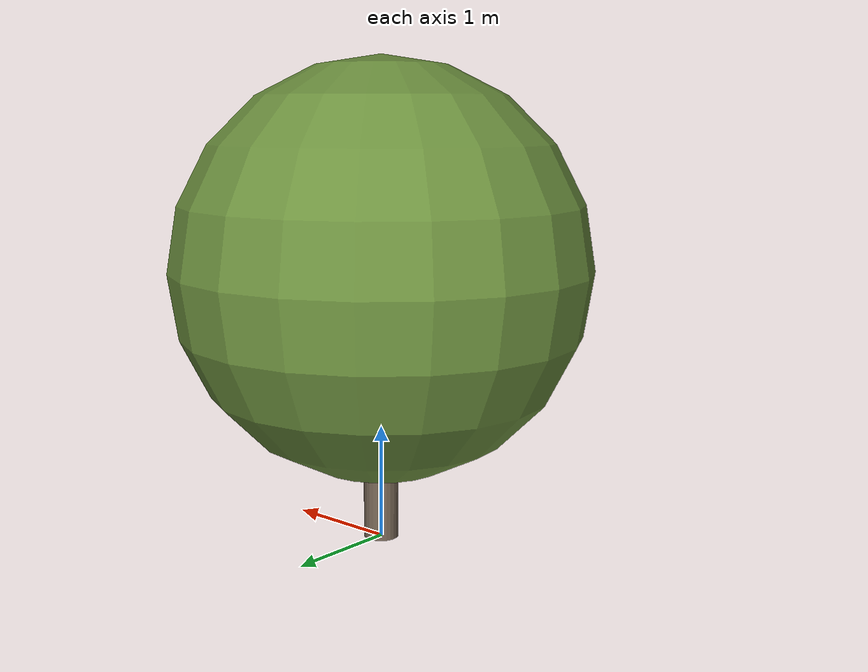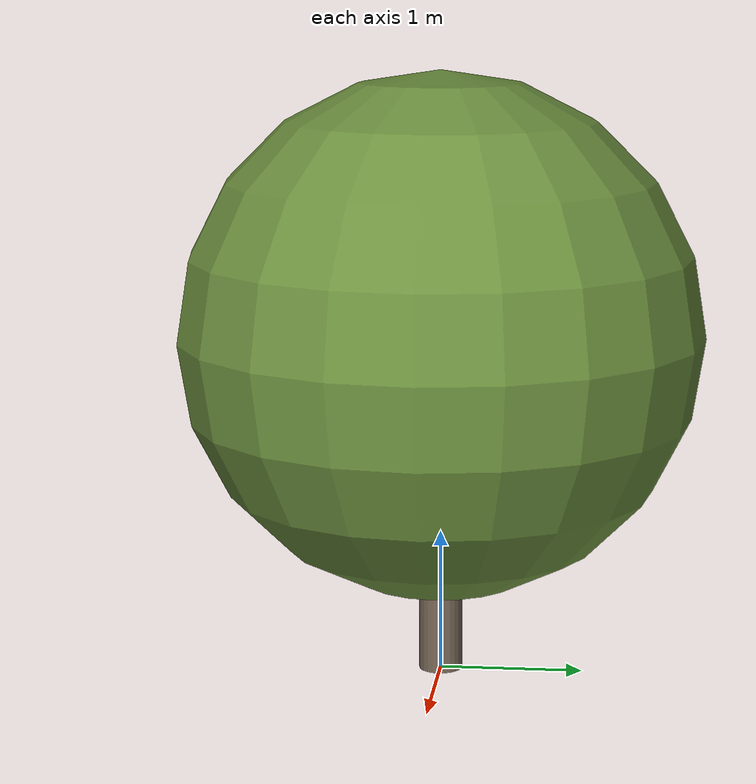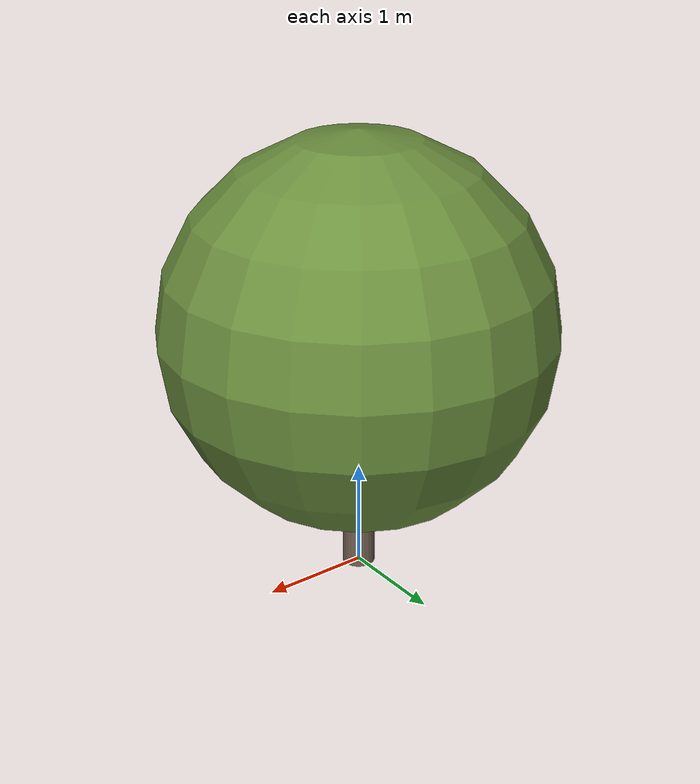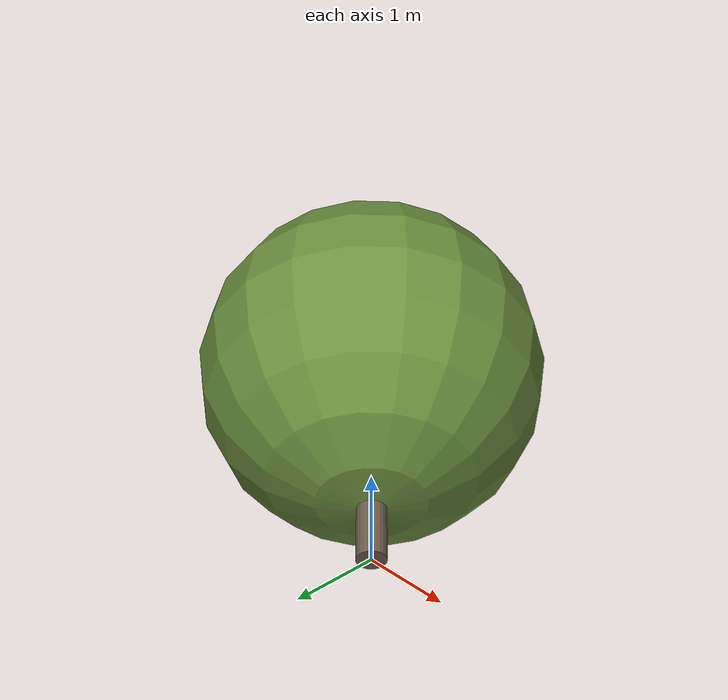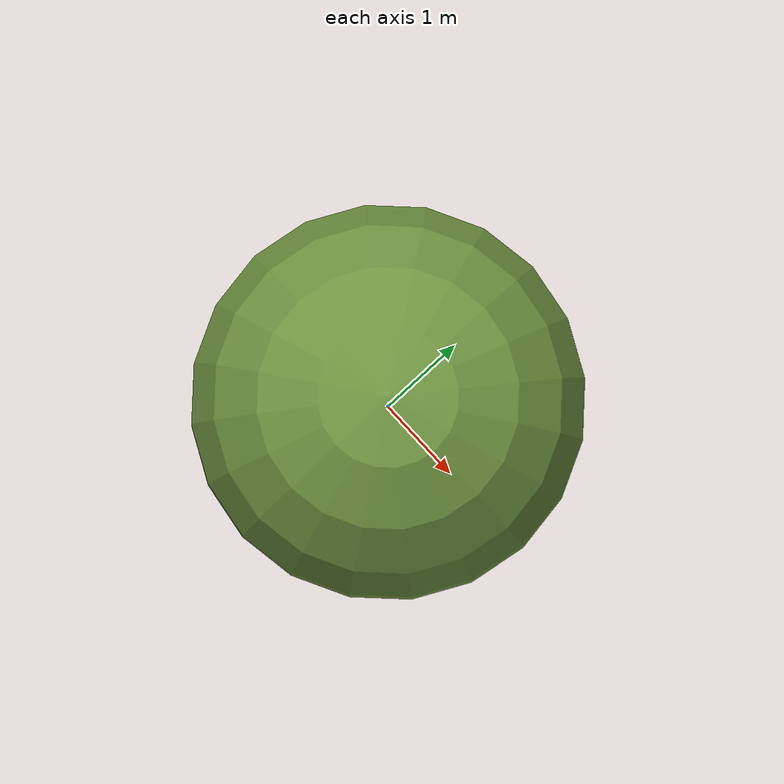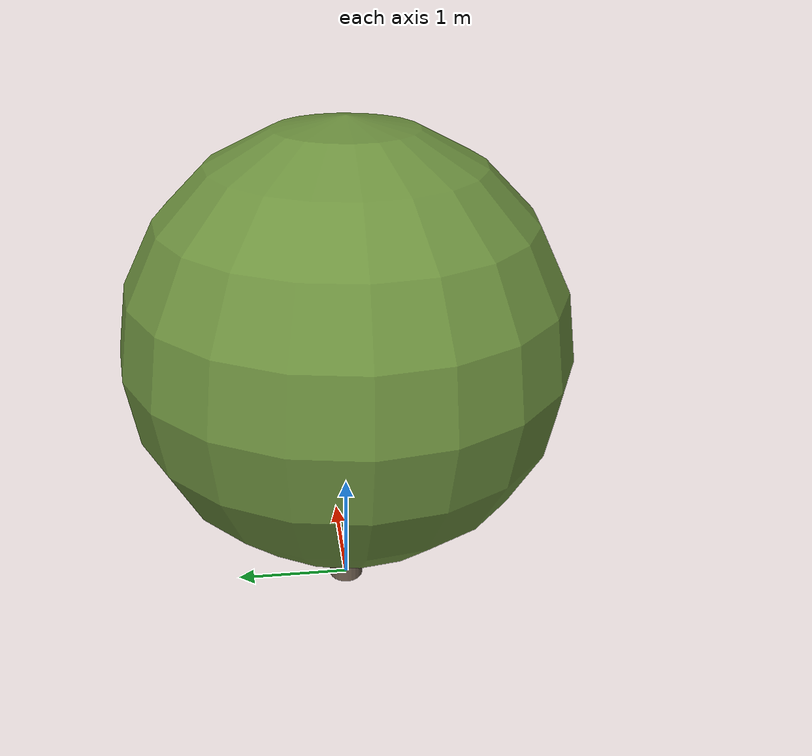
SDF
<?xml version="1.0" ?>
<sdf version="1.10">
  <model name="olivier_provence_08">
    <static>true</static>

    <!-- Tronc -->
    <link name="trunk">
      <pose>0 0 0.9271566746571115 0 0 0</pose>
      <visual name="trunk_visual">
        <geometry>
          <cylinder>
            <radius>0.1526959237654648</radius>
            <length>1.854313349314223</length>
          </cylinder>
        </geometry>
        <material>
          <ambient>0.42 0.36 0.30 1</ambient>
          <diffuse>0.42 0.36 0.30 1</diffuse>
          <specular>0.1 0.1 0.1 1</specular>
        </material>
      </visual>
      <collision name="trunk_collision">
        <geometry>
          <cylinder>
            <radius>0.1526959237654648</radius>
            <length>1.854313349314223</length>
          </cylinder>
        </geometry>
      </collision>
    </link>

    <!-- Feuillage -->
    <link name="crown">
      <pose>0 0 2.403606098778342 0 0 0</pose>
      <visual name="crown_visual">
        <geometry>
          <sphere>
              <radius>1.8309758315470628</radius>
            </sphere>
        </geometry>
        <material>
          <ambient>0.42 0.56 0.24 1</ambient>
          <diffuse>0.42 0.56 0.24 1</diffuse>
          <specular>0.1 0.1 0.1 1</specular>
        </material>
      </visual>
      <collision name="crown_collision">
        <geometry>
          <sphere>
            <radius>1.4647806652376503</radius>
          </sphere>
        </geometry>
      </collision>
    </link>

    <!-- Joint tronc-feuillage -->
    <joint name="trunk_crown_joint" type="fixed">
      <parent>trunk</parent>
      <child>crown</child>
    </joint>

  </model>
</sdf>
